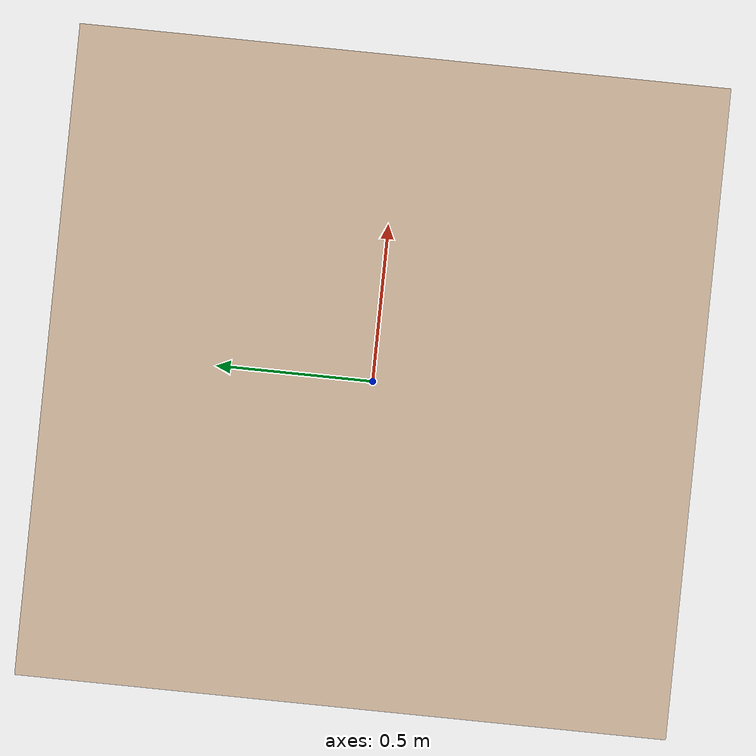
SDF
<?xml version="1.0" ?>
<sdf version="1.8">
  <world name="scara_world">
    <!-- Physics -->
    <physics name="1ms" type="ignored">
      <max_step_size>0.001</max_step_size>
      <real_time_factor>1.0</real_time_factor>
    </physics>

    <!-- Plugins -->
    <plugin
      filename="gz-sim-physics-system"
      name="gz::sim::systems::Physics">
    </plugin>
    <plugin
      filename="gz-sim-user-commands-system"
      name="gz::sim::systems::UserCommands">
    </plugin>
    <plugin
      filename="gz-sim-scene-broadcaster-system"
      name="gz::sim::systems::SceneBroadcaster">
    </plugin>

    <!-- Lighting -->
    <light type="directional" name="sun">
      <cast_shadows>true</cast_shadows>
      <pose>0 0 10 0 0 0</pose>
      <diffuse>0.8 0.8 0.8 1</diffuse>
      <specular>0.2 0.2 0.2 1</specular>
      <attenuation>
        <range>1000</range>
        <constant>0.9</constant>
        <linear>0.01</linear>
        <quadratic>0.001</quadratic>
      </attenuation>
      <direction>-0.5 0.1 -0.9</direction>
    </light>

    <!-- Ground Plane -->
    <include>
      <uri>https://fuel.gazebosim.org/1.0/OpenRobotics/models/Ground Plane</uri>
    </include>

    <!-- Simple table model -->
    <model name="work_table">
      <pose>0 0 0.4 0 0 0</pose>
      <static>true</static>
      <link name="table_link">
        <collision name="surface">
          <geometry>
            <box>
              <size>2.0 2.0 0.03</size>
            </box>
          </geometry>
        </collision>
        <visual name="surface">
          <geometry>
            <box>
              <size>2.0 2.0 0.03</size>
            </box>
          </geometry>
          <material>
            <ambient>0.8 0.7 0.6 1</ambient>
            <diffuse>0.8 0.7 0.6 1</diffuse>
            <specular>0.3 0.3 0.3 1</specular>
          </material>
        </visual>
        <!-- Legs -->
        <collision name="leg1">
          <pose>0.9 0.9 -0.4 0 0 0</pose>
          <geometry>
            <cylinder>
              <radius>0.03</radius>
              <length>0.8</length>
            </cylinder>
          </geometry>
        </collision>
        <visual name="leg1">
          <pose>0.9 0.9 -0.4 0 0 0</pose>
          <geometry>
            <cylinder>
              <radius>0.03</radius>
              <length>0.8</length>
            </cylinder>
          </geometry>
          <material>
            <ambient>0.3 0.3 0.3 1</ambient>
            <diffuse>0.3 0.3 0.3 1</diffuse>
          </material>
        </visual>
        <collision name="leg2">
          <pose>-0.9 0.9 -0.4 0 0 0</pose>
          <geometry>
            <cylinder>
              <radius>0.03</radius>
              <length>0.8</length>
            </cylinder>
          </geometry>
        </collision>
        <visual name="leg2">
          <pose>-0.9 0.9 -0.4 0 0 0</pose>
          <geometry>
            <cylinder>
              <radius>0.03</radius>
              <length>0.8</length>
            </cylinder>
          </geometry>
          <material>
            <ambient>0.3 0.3 0.3 1</ambient>
            <diffuse>0.3 0.3 0.3 1</diffuse>
          </material>
        </visual>
        <collision name="leg3">
          <pose>0.9 -0.9 -0.4 0 0 0</pose>
          <geometry>
            <cylinder>
              <radius>0.03</radius>
              <length>0.8</length>
            </cylinder>
          </geometry>
        </collision>
        <visual name="leg3">
          <pose>0.9 -0.9 -0.4 0 0 0</pose>
          <geometry>
            <cylinder>
              <radius>0.03</radius>
              <length>0.8</length>
            </cylinder>
          </geometry>
          <material>
            <ambient>0.3 0.3 0.3 1</ambient>
            <diffuse>0.3 0.3 0.3 1</diffuse>
          </material>
        </visual>
        <collision name="leg4">
          <pose>-0.9 -0.9 -0.4 0 0 0</pose>
          <geometry>
            <cylinder>
              <radius>0.03</radius>
              <length>0.8</length>
            </cylinder>
          </geometry>
        </collision>
        <visual name="leg4">
          <pose>-0.9 -0.9 -0.4 0 0 0</pose>
          <geometry>
            <cylinder>
              <radius>0.03</radius>
              <length>0.8</length>
            </cylinder>
          </geometry>
          <material>
            <ambient>0.3 0.3 0.3 1</ambient>
            <diffuse>0.3 0.3 0.3 1</diffuse>
          </material>
        </visual>
      </link>
    </model>

  </world>
</sdf>
